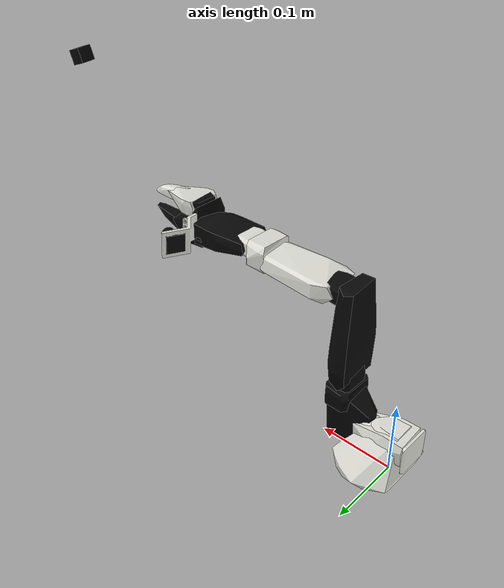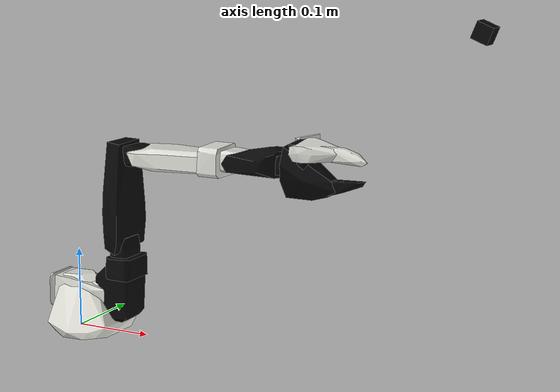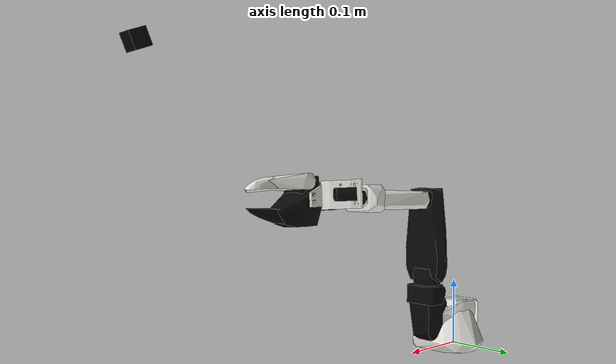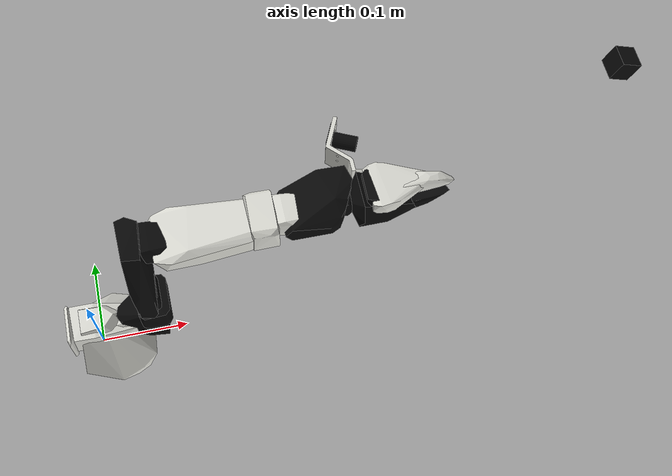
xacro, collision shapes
<?xml version="1.0" encoding="utf-8"?>
<!-- Generated using onshape-to-robot -->
<!-- Onshape https://cad.onshape.com/documents/7715cc284bb430fe6dab4ffd/w/4fd0791b683777b02f8d975a/e/826c553ede3b7592eb9ca800 -->
<robot xmlns:xacro="http://www.ros.org/wiki/xacro" name="so101_new_calib">
  <xacro:arg name="controllers_file" default=""/>

  <!-- Materials -->

  <!-- Matte off-white PLA used for all 3D-printed robot parts -->
  <material name="3d_printed">
    <color rgba="0.88 0.88 0.85 1.0"/>
  </material>

  <!-- Black plastic housing used for STS3215 servos -->
  <material name="sts3215">
    <color rgba="0.03 0.03 0.03 1.0"/>
  </material>
  <material name="camera_black_plastic">
    <color rgba="0.03 0.03 0.03 1.0"/>
  </material>

  <link name="world"/>

  <joint name="world_to_base" type="fixed">
    <parent link="world"/>
    <child link="base_link"/>
    <origin xyz="0 0 0" rpy="0 0 0"/>
  </joint>

  <!-- Link base -->
  <link name="base_link">
    <inertial>
      <origin xyz="0.0137179 -5.19711e-05 0.0334843" rpy="0 0 0"/>
      <mass value="0.147"/>
      <inertia ixx="0.000114686" ixy="-4.59787e-07" ixz="4.97151e-06" iyy="0.000136117" iyz="9.75275e-08" izz="0.000130364"/>
    </inertial>
    <!-- Part base_motor_holder_so101_v1 -->
    <visual>
      <origin xyz="-0.00636471 -9.94414e-05 -0.0024" rpy="1.5708 -1.67685e-15 1.5708"/>
      <geometry>
        <mesh filename="package://so101_description/meshes/base_motor_holder_so101_v1.stl"/>
      </geometry>
      <material name="3d_printed">
        <color rgba="0.88 0.88 0.85 1.0"/>
      </material>
    </visual>
    <collision>
      <origin xyz="-0.00636471 -9.94414e-05 -0.0024" rpy="1.5708 -1.67685e-15 1.5708"/>
      <geometry>
        <mesh filename="package://so101_description/meshes/collision_generated_ultralow/base_motor_holder_so101_v1__ultralow_1hull__part_00.stl"/>
      </geometry>
    </collision>
    <!-- Part base_so101_v2 -->
    <visual>
      <origin xyz="-0.00636471 -8.97657e-09 -0.0024" rpy="1.5708 -2.78073e-29 1.5708"/>
      <geometry>
        <mesh filename="package://so101_description/meshes/base_so101_v2.stl"/>
      </geometry>
      <material name="3d_printed">
        <color rgba="0.88 0.88 0.85 1.0"/>
      </material>
    </visual>
    <collision>
      <origin xyz="-0.00636471 -8.97657e-09 -0.0024" rpy="1.5708 -2.78073e-29 1.5708"/>
      <geometry>
        <mesh filename="package://so101_description/meshes/collision_generated_ultralow/base_so101_v2__ultralow_1hull__part_00.stl"/>
      </geometry>
    </collision>
    <!-- Part sts3215_03a_v1 -->
    <visual>
      <origin xyz="0.0263353 -8.97657e-09 0.0437" rpy="-8.21148e-16 7.84513e-18 1.249e-15"/>
      <geometry>
        <mesh filename="package://so101_description/meshes/sts3215_03a_v1.stl"/>
      </geometry>
      <material name="sts3215">
        <color rgba="0.03 0.03 0.03 1.0"/>
      </material>
    </visual>
    <collision>
      <origin xyz="0.0263353 -8.97657e-09 0.0437" rpy="-8.21148e-16 7.84513e-18 1.249e-15"/>
      <geometry>
        <mesh filename="package://so101_description/meshes/collision_generated_ultralow/sts3215_03a_v1__ultralow_1hull__part_00.stl"/>
      </geometry>
    </collision>
    <!-- Part waveshare_mounting_plate_so101_v2 -->
    <visual>
      <origin xyz="-0.0309827 -0.000199441 0.0474" rpy="1.5708 -1.35493e-14 1.5708"/>
      <geometry>
        <mesh filename="package://so101_description/meshes/waveshare_mounting_plate_so101_v2.stl"/>
      </geometry>
      <material name="3d_printed">
        <color rgba="0.88 0.88 0.85 1.0"/>
      </material>
    </visual>
    <collision>
      <origin xyz="-0.0309827 -0.000199441 0.0474" rpy="1.5708 -1.35493e-14 1.5708"/>
      <geometry>
        <mesh filename="package://so101_description/meshes/collision_generated_ultralow/waveshare_mounting_plate_so101_v2__ultralow_1hull__part_00.stl"/>
      </geometry>
    </collision>
  </link>

  <!-- Top camera link (overhead fixed camera) -->
  <link name="top_camera_link">
    <inertial>
      <origin xyz="0 0 0" rpy="0 0 0"/>
      <mass value="0.01"/>
      <inertia ixx="6.67e-07" ixy="0" ixz="0" iyy="6.67e-07" iyz="0" izz="6.67e-07"/>
    </inertial>
    <visual>
      <origin xyz="0 0 0" rpy="0 0 0"/>
      <geometry>
        <box size="0.02 0.02 0.02"/>
      </geometry>
      <material name="camera_black_plastic"/>
    </visual>
    <collision>
      <origin xyz="0 0 0" rpy="0 0 0"/>
      <geometry>
        <box size="0.02 0.02 0.02"/>
      </geometry>
    </collision>
  </link>

  <!-- Link shoulder -->
  <link name="shoulder_link">
    <inertial>
      <origin xyz="-0.0307604 -1.66727e-05 -0.0252713" rpy="0 0 0"/>
      <mass value="0.100006"/>
      <inertia ixx="8.3759e-05" ixy="7.55525e-08" ixz="-1.16342e-06" iyy="8.10403e-05" iyz="1.54663e-07" izz="2.39783e-05"/>
    </inertial>
    <!-- Part sts3215_03a_v1_2 -->
    <visual>
      <origin xyz="-0.0303992 0.000422241 -0.0417" rpy="1.5708 1.5708 0"/>
      <geometry>
        <mesh filename="package://so101_description/meshes/sts3215_03a_v1.stl"/>
      </geometry>
      <material name="sts3215">
        <color rgba="0.03 0.03 0.03 1.0"/>
      </material>
    </visual>
    <collision>
      <origin xyz="-0.0303992 0.000422241 -0.0417" rpy="1.5708 1.5708 0"/>
      <geometry>
        <mesh filename="package://so101_description/meshes/collision_generated_ultralow/sts3215_03a_v1__ultralow_1hull__part_00.stl"/>
      </geometry>
    </collision>
    <!-- Part motor_holder_so101_base_v1 -->
    <visual>
      <origin xyz="-0.0675992 -0.000177759 0.0158499" rpy="1.5708 -1.5708 0"/>
      <geometry>
        <mesh filename="package://so101_description/meshes/motor_holder_so101_base_v1.stl"/>
      </geometry>
      <material name="3d_printed">
        <color rgba="0.88 0.88 0.85 1.0"/>
      </material>
    </visual>
    <collision>
      <origin xyz="-0.0675992 -0.000177759 0.0158499" rpy="1.5708 -1.5708 0"/>
      <geometry>
        <mesh filename="package://so101_description/meshes/collision_generated_ultralow/motor_holder_so101_base_v1__ultralow_1hull__part_00.stl"/>
      </geometry>
    </collision>
    <!-- Part rotation_pitch_so101_v1 -->
    <visual>
      <origin xyz="0.0122008 2.22413e-05 0.0464" rpy="-1.5708 2.35221e-33 0"/>
      <geometry>
        <mesh filename="package://so101_description/meshes/rotation_pitch_so101_v1.stl"/>
      </geometry>
      <material name="3d_printed">
        <color rgba="0.88 0.88 0.85 1.0"/>
      </material>
    </visual>
    <collision>
      <origin xyz="0.0122008 2.22413e-05 0.0464" rpy="-1.5708 2.35221e-33 0"/>
      <geometry>
        <mesh filename="package://so101_description/meshes/collision_generated_ultralow/rotation_pitch_so101_v1__ultralow_1hull__part_00.stl"/>
      </geometry>
    </collision>
  </link>

  <!-- Link upper_arm -->
  <link name="upper_arm_link">
    <inertial>
      <origin xyz="-0.0898471 -0.00838224 0.0184089" rpy="0 0 0"/>
      <mass value="0.103"/>
      <inertia ixx="4.08002e-05" ixy="-1.97819e-05" ixz="-4.03016e-08" iyy="0.000147318" iyz="8.97326e-09" izz="0.000142487"/>
    </inertial>
    <!-- Part sts3215_03a_v1_3 -->
    <visual>
      <origin xyz="-0.11257 -0.0155 0.0187" rpy="-3.14159 -5.27356e-16 -1.5708"/>
      <geometry>
        <mesh filename="package://so101_description/meshes/sts3215_03a_v1.stl"/>
      </geometry>
      <material name="sts3215">
        <color rgba="0.03 0.03 0.03 1.0"/>
      </material>
    </visual>
    <collision>
      <origin xyz="-0.11257 -0.0155 0.0187" rpy="-3.14159 -5.27356e-16 -1.5708"/>
      <geometry>
        <mesh filename="package://so101_description/meshes/collision_generated_ultralow/sts3215_03a_v1__ultralow_1hull__part_00.stl"/>
      </geometry>
    </collision>
    <!-- Part upper_arm_so101_v1 -->
    <visual>
      <origin xyz="-0.065085 0.012 0.0182" rpy="3.14159 -0 -1.30911e-30"/>
      <geometry>
        <mesh filename="package://so101_description/meshes/upper_arm_so101_v1.stl"/>
      </geometry>
      <material name="3d_printed">
        <color rgba="0.88 0.88 0.85 1.0"/>
      </material>
    </visual>
    <collision>
      <origin xyz="-0.065085 0.012 0.0182" rpy="3.14159 -0 -1.30911e-30"/>
      <geometry>
        <mesh filename="package://so101_description/meshes/collision_generated_ultralow/upper_arm_so101_v1__ultralow_1hull__part_00.stl"/>
      </geometry>
    </collision>
  </link>

  <!-- Link lower_arm -->
  <link name="lower_arm_link">
    <inertial>
      <origin xyz="-0.0980701 0.00324376 0.0182831" rpy="0 0 0"/>
      <mass value="0.104"/>
      <inertia ixx="2.87438e-05" ixy="7.41152e-06" ixz="1.26409e-06" iyy="0.000159844" iyz="-4.90188e-08" izz="0.00014529"/>
    </inertial>
    <!-- Part under_arm_so101_v1 -->
    <visual>
      <origin xyz="-0.0648499 -0.032 0.0182" rpy="3.14159 -0 6.67202e-31"/>
      <geometry>
        <mesh filename="package://so101_description/meshes/under_arm_so101_v1.stl"/>
      </geometry>
      <material name="3d_printed">
        <color rgba="0.88 0.88 0.85 1.0"/>
      </material>
    </visual>
    <collision>
      <origin xyz="-0.0648499 -0.032 0.0182" rpy="3.14159 -0 6.67202e-31"/>
      <geometry>
        <mesh filename="package://so101_description/meshes/collision_generated_ultralow/under_arm_so101_v1__ultralow_1hull__part_00.stl"/>
      </geometry>
    </collision>
    <!-- Part motor_holder_so101_wrist_v1 -->
    <visual>
      <origin xyz="-0.0648499 -0.032 0.018" rpy="-3.14159 -2.55351e-15 -1.83387e-30"/>
      <geometry>
        <mesh filename="package://so101_description/meshes/motor_holder_so101_wrist_v1.stl"/>
      </geometry>
      <material name="3d_printed">
        <color rgba="0.88 0.88 0.85 1.0"/>
      </material>
    </visual>
    <collision>
      <origin xyz="-0.0648499 -0.032 0.018" rpy="-3.14159 -2.55351e-15 -1.83387e-30"/>
      <geometry>
        <mesh filename="package://so101_description/meshes/collision_generated_ultralow/motor_holder_so101_wrist_v1__ultralow_1hull__part_00.stl"/>
      </geometry>
    </collision>
    <!-- Part sts3215_03a_v1_4 -->
    <visual>
      <origin xyz="-0.1224 0.0052 0.0187" rpy="-3.14159 -7.88861e-31 -3.14159"/>
      <geometry>
        <mesh filename="package://so101_description/meshes/sts3215_03a_v1.stl"/>
      </geometry>
      <material name="sts3215">
        <color rgba="0.03 0.03 0.03 1.0"/>
      </material>
    </visual>
    <collision>
      <origin xyz="-0.1224 0.0052 0.0187" rpy="-3.14159 -7.88861e-31 -3.14159"/>
      <geometry>
        <mesh filename="package://so101_description/meshes/collision_generated_ultralow/sts3215_03a_v1__ultralow_1hull__part_00.stl"/>
      </geometry>
    </collision>
  </link>

  <!-- Link wrist -->
  <link name="wrist_link">
    <inertial>
      <origin xyz="-0.000103312 -0.0386143 0.0281156" rpy="0 0 0"/>
      <mass value="0.079"/>
      <inertia ixx="3.68263e-05" ixy="1.7893e-08" ixz="-5.28128e-08" iyy="2.5391e-05" iyz="3.6412e-06" izz="2.1e-05"/>
    </inertial>
    <!-- Part sts3215_03a_no_horn_v1 -->
    <visual>
      <origin xyz="8.32667e-17 -0.0424 0.0306" rpy="1.5708 1.5708 0"/>
      <geometry>
        <mesh filename="package://so101_description/meshes/sts3215_03a_no_horn_v1.stl"/>
      </geometry>
      <material name="sts3215">
        <color rgba="0.03 0.03 0.03 1.0"/>
      </material>
    </visual>
    <collision>
      <origin xyz="8.32667e-17 -0.0424 0.0306" rpy="1.5708 1.5708 0"/>
      <geometry>
        <mesh filename="package://so101_description/meshes/collision_generated_ultralow/sts3215_03a_no_horn_v1__ultralow_1hull__part_00.stl"/>
      </geometry>
    </collision>
    <!-- Part wrist_roll_pitch_so101_v2 -->
    <visual>
      <origin xyz="0 -0.028 0.0181" rpy="-1.5708 -1.5708 0"/>
      <geometry>
        <mesh filename="package://so101_description/meshes/wrist_roll_pitch_so101_v2.stl"/>
      </geometry>
      <material name="3d_printed">
        <color rgba="0.88 0.88 0.85 1.0"/>
      </material>
    </visual>
    <collision>
      <origin xyz="0 -0.028 0.0181" rpy="-1.5708 -1.5708 0"/>
      <geometry>
        <mesh filename="package://so101_description/meshes/collision_generated_ultralow/wrist_roll_pitch_so101_v2__ultralow_1hull__part_00.stl"/>
      </geometry>
    </collision>
  </link>

  <!-- Link gripper -->
  <link name="gripper_link">
    <inertial>
      <origin xyz="0.000213627 0.000245138 -0.025187" rpy="0 0 0"/>
      <mass value="0.087"/>
      <inertia ixx="2.75087e-05" ixy="-3.35241e-07" ixz="-5.7352e-06" iyy="4.33657e-05" iyz="-5.17847e-08" izz="3.45059e-05"/>
    </inertial>
    <!-- Part sts3215_03a_v1_5 -->
    <visual>
      <origin xyz="0.0077 0.0001 -0.0234" rpy="-1.5708 -5.19179e-17 -1.66533e-16"/>
      <geometry>
        <mesh filename="package://so101_description/meshes/sts3215_03a_v1.stl"/>
      </geometry>
      <material name="sts3215">
        <color rgba="0.03 0.03 0.03 1.0"/>
      </material>
    </visual>
    <collision>
      <origin xyz="0.0077 0.0001 -0.0234" rpy="-1.5708 -5.19179e-17 -1.66533e-16"/>
      <geometry>
        <mesh filename="package://so101_description/meshes/collision_generated_ultralow/sts3215_03a_v1__ultralow_1hull__part_00.stl"/>
      </geometry>
    </collision>
    <!-- Part wrist_roll_follower_so101_v1 -->
    <visual>
      <origin xyz="8.32667e-17 -0.000218214 0.000949706" rpy="-3.14159 -5.55112e-17 0"/>
      <geometry>
        <mesh filename="package://so101_description/meshes/wrist_roll_follower_so101_v1.stl"/>
      </geometry>
      <material name="3d_printed">
        <color rgba="0.88 0.88 0.85 1.0"/>
      </material>
    </visual>
    <collision name="generated_wrist_roll_follower_so101_v1_part_00">
      <origin xyz="8.32667e-17 -0.000218214 0.000949706" rpy="-3.14159 -5.55112e-17 0"/>
      <geometry>
        <mesh filename="package://so101_description/meshes/collision_generated_ultralow/wrist_roll_follower_so101_v1__functional_body__part_00.stl"/>
      </geometry>
    </collision>
    <collision name="generated_wrist_roll_follower_so101_v1_part_01">
      <origin xyz="8.32667e-17 -0.000218214 0.000949706" rpy="-3.14159 -5.55112e-17 0"/>
      <geometry>
        <mesh filename="package://so101_description/meshes/collision_generated_ultralow/wrist_roll_follower_so101_v1__functional_finger__part_01.stl"/>
      </geometry>
    </collision>
  </link>

  <!-- Gripper frame (dummy link + fixed joint) -->
  <link name="gripper_frame_link">
    <origin xyz="0 0 0" rpy="0 -0 0"/>
    <inertial>
      <origin xyz="0 0 0" rpy="0 0 0"/>
      <mass value="1e-9"/>
      <inertia ixx="0" ixy="0" ixz="0" iyy="0" iyz="0" izz="0"/>
    </inertial>
  </link>

  <!-- Physical mounting bracket for the gripper camera.
       The camera sensor remains on gripper_camera_link for now. -->
  <link name="gripper_camera_mount_link">
    <inertial>
      <origin xyz="0 0 0" rpy="0 0 0"/>
      <mass value="0.01"/>
      <inertia
        ixx="1e-6" ixy="0" ixz="0"
        iyy="1e-6" iyz="0"
        izz="1e-6"/>
    </inertial>

    <visual>
      <origin xyz="0 0 0" rpy="0 0 0"/>
      <geometry>
        <mesh
          filename="package://so101_description/meshes/gripper_camera_mount.stl"
          scale="0.001 0.001 0.001"/>
      </geometry>
      <material name="3d_printed">
        <color rgba="0.88 0.88 0.85 1.0"/>
      </material>
    </visual>

    <collision name="gripper_camera_mount_collision">
      <origin xyz="0 0 0" rpy="0 0 0"/>
      <geometry>
        <mesh
          filename="package://so101_description/meshes/gripper_camera_mount.stl"
          scale="0.001 0.001 0.001"/>
      </geometry>
    </collision>
  </link>

  <!-- Temporary initial pose.
       Adjust this joint to align the bracket with the physical gripper body. -->
  <joint name="gripper_camera_mount_joint" type="fixed">
    <origin xyz="0.1211 0.023897 -0.12016"
            rpy="-1.570796 3.141593 0"/>
    <parent link="gripper_link"/>
    <child link="gripper_camera_mount_link"/>
  </joint>

  <link name="gripper_camera_link">
    <inertial>
      <origin xyz="0 0 0" rpy="0 0 0"/>
      <mass value="0.02"/>
      <inertia
        ixx="1e-5" ixy="0" ixz="0"
        iyy="1e-5" iyz="0"
        izz="1e-5"/>
    </inertial>

    <!-- Camera body: 27 mm x 30 mm x 2 mm.
         Link origin is at the centre of the body/lens interface. -->
    <visual name="camera_body_visual">
      <origin xyz="0 0 -0.001" rpy="0 0 0"/>
      <geometry>
        <box size="0.024 0.024 0.002"/>
      </geometry>
      <material name="camera_body_material">
        <color rgba="0.03 0.03 0.03 1.0"/>
      </material>
    </visual>

    <!-- Cylindrical camera section: radius 8 mm, length 28 mm.
         Extends from the sensor origin along +Z. -->
    <visual name="camera_lens_visual">
      <origin xyz="0 0 0.014" rpy="0 0 0"/>
      <geometry>
        <cylinder radius="0.008" length="0.028"/>
      </geometry>
      <material name="camera_lens_material">
        <color rgba="0.01 0.01 0.01 1.0"/>
      </material>
    </visual>

    <collision name="camera_body_collision">
      <origin xyz="0 0 -0.001" rpy="0 0 0"/>
      <geometry>
        <box size="0.024 0.024 0.002"/>
      </geometry>
    </collision>

    <collision name="camera_lens_collision">
      <origin xyz="0 0 0.014" rpy="0 0 0"/>
      <geometry>
        <cylinder radius="0.008" length="0.028"/>
      </geometry>
    </collision>
  </link>

  <joint name="gripper_frame_joint" type="fixed">
    <origin xyz="-0.0079 -0.000218121 -0.0981274" rpy="0 3.14159 0"/>
    <parent link="gripper_link"/>
    <child link="gripper_frame_link"/>
    <axis xyz="0 0 0"/>
  </joint>

  <joint name="gripper_camera_joint" type="fixed">
    <!-- xyz: camera mount position relative to end-effector frame (gripper_frame_link) -->
    <!-- rpy: camera orientation relative to end-effector frame (gripper_frame_link) -->
    <origin xyz="-0.0103 0.07322 -0.104" rpy="0.436332 0 0"/>
    <parent link="gripper_frame_link"/>
    <child link="gripper_camera_link"/>
  </joint>

  <!-- Link moving_jaw_so101_v1 -->
  <link name="moving_jaw_so101_v1_link">
    <inertial>
      <origin xyz="-0.00157495 -0.0300244 0.0192755" rpy="0 0 0"/>
      <mass value="0.012"/>
      <inertia ixx="6.61427e-06" ixy="-3.19807e-07" ixz="-5.90717e-09" iyy="1.89032e-06" iyz="-1.09945e-07" izz="5.28738e-06"/>
    </inertial>
    <!-- Part moving_jaw_so101_v1 -->
    <visual>
      <origin xyz="-5.55112e-17 -5.55112e-17 0.0189" rpy="9.53145e-17 6.93889e-18 1.24077e-24"/>
      <geometry>
        <mesh filename="package://so101_description/meshes/moving_jaw_so101_v1.stl"/>
      </geometry>
      <material name="3d_printed">
        <color rgba="0.88 0.88 0.85 1.0"/>
      </material>
    </visual>
    <collision name="generated_moving_jaw_so101_v1_part_00">
      <origin xyz="-5.55112e-17 -5.55112e-17 0.0189" rpy="9.53145e-17 6.93889e-18 1.24077e-24"/>
      <geometry>
        <mesh filename="package://so101_description/meshes/collision_generated_ultralow/moving_jaw_so101_v1__functional_body__part_00.stl"/>
      </geometry>
    </collision>
    <collision name="generated_moving_jaw_so101_v1_part_01">
      <origin xyz="-5.55112e-17 -5.55112e-17 0.0189" rpy="9.53145e-17 6.93889e-18 1.24077e-24"/>
      <geometry>
        <mesh filename="package://so101_description/meshes/collision_generated_ultralow/moving_jaw_so101_v1__functional_finger__part_01.stl"/>
      </geometry>
    </collision>
  </link>

  <!-- Joint from gripper to moving_jaw_so101_v1 -->
  <joint name="gripper" type="revolute">
    <origin xyz="0.0202 0.0188 -0.0234" rpy="1.5708 -5.24284e-08 -1.41553e-15"/>
    <parent link="gripper_link"/>
    <child link="moving_jaw_so101_v1_link"/>
    <axis xyz="0 0 1"/>
    <limit effort="10" velocity="10" lower="-0.174533" upper="1.74533"/>
  </joint>

  <!-- Joint from wrist to gripper -->
  <joint name="wrist_roll" type="revolute">
    <origin xyz="5.55112e-17 -0.0611 0.0181" rpy="1.5708 0.0486795 3.14159"/>
    <parent link="wrist_link"/>
    <child link="gripper_link"/>
    <axis xyz="0 0 1"/>
    <limit effort="10" velocity="10" lower="-2.74385" upper="2.84121"/>
  </joint>

  <!-- Joint from lower_arm to wrist -->
  <joint name="wrist_flex" type="revolute">
    <origin xyz="-0.1349 0.0052 3.62355e-17" rpy="4.02456e-15 8.67362e-16 -1.5708"/>
    <parent link="lower_arm_link"/>
    <child link="wrist_link"/>
    <axis xyz="0 0 1"/>
    <limit effort="10" velocity="10" lower="-1.65806" upper="1.65806"/>
  </joint>

  <!-- Joint from upper_arm to lower_arm -->
  <!-- Note: 5-degree calibration offset applied to joint limits -->
  <joint name="elbow_flex" type="revolute">
    <origin xyz="-0.11257 -0.028 1.73763e-16" rpy="-3.63608e-16 8.74301e-16 1.5708"/>
    <parent link="upper_arm_link"/>
    <child link="lower_arm_link"/>
    <axis xyz="0 0 1"/>
    <limit effort="10" velocity="10" lower="-1.69" upper="1.69"/>
  </joint>

  <!-- Joint from shoulder to upper_arm -->
  <joint name="shoulder_lift" type="revolute">
    <origin xyz="-0.0303992 -0.0182778 -0.0542" rpy="-1.5708 -1.5708 0"/>
    <parent link="shoulder_link"/>
    <child link="upper_arm_link"/>
    <axis xyz="0 0 1"/>
    <limit effort="10" velocity="10" lower="-1.74533" upper="1.74533"/>
  </joint>

  <!-- Joint from base to shoulder -->
  <joint name="shoulder_pan" type="revolute">
    <origin xyz="0.0388353 -8.97657e-09 0.0624" rpy="3.14159 4.18253e-17 -3.14159"/>
    <parent link="base_link"/>
    <child link="shoulder_link"/>
    <axis xyz="0 0 1"/>
    <limit effort="10" velocity="10" lower="-1.91986" upper="1.91986"/>
  </joint>

  <joint name="top_camera_joint" type="fixed">
    <origin xyz="0.528 0.000 0.3976" rpy="0 1.954769 0"/>
    <parent link="base_link"/>
    <child link="top_camera_link"/>
  </joint>

  <ros2_control name="GazeboSimSystem" type="system">
    <hardware>
      <plugin>gz_ros2_control/GazeboSimSystem</plugin>
    </hardware>
    <joint name="shoulder_pan">
      <command_interface name="position"/>
      <state_interface name="position"/>
      <state_interface name="velocity"/>
    </joint>
    <joint name="shoulder_lift">
      <command_interface name="position"/>
      <state_interface name="position"/>
      <state_interface name="velocity"/>
    </joint>
    <joint name="elbow_flex">
      <command_interface name="position"/>
      <state_interface name="position"/>
      <state_interface name="velocity"/>
    </joint>
    <joint name="wrist_flex">
      <command_interface name="position"/>
      <state_interface name="position"/>
      <state_interface name="velocity"/>
    </joint>
    <joint name="wrist_roll">
      <command_interface name="position"/>
      <state_interface name="position"/>
      <state_interface name="velocity"/>
    </joint>
    <joint name="gripper">
      <command_interface name="position"/>
      <state_interface name="position"/>
      <state_interface name="velocity"/>
    </joint>
  </ros2_control>

  <gazebo reference="gripper_link">
    <sensor name="fixed_finger_contact" type="contact">
      <always_on>true</always_on>
      <update_rate>100</update_rate>
      <contact>
        <topic>/so101/contacts/raw/fixed_finger</topic>
        <collision>gripper_link_fixed_joint_lump__generated_wrist_roll_follower_so101_v1_part_01_collision_2</collision>
      </contact>
    </sensor>
  </gazebo>
  <gazebo reference="moving_jaw_so101_v1_link">
    <sensor name="moving_finger_contact" type="contact">
      <always_on>true</always_on>
      <update_rate>100</update_rate>
      <contact>
        <topic>/so101/contacts/raw/moving_finger</topic>
        <collision>moving_jaw_so101_v1_link_fixed_joint_lump__generated_moving_jaw_so101_v1_part_01_collision_1</collision>
      </contact>
    </sensor>
  </gazebo>

  <gazebo>
    <plugin filename="gz_ros2_control-system" name="gz_ros2_control::GazeboSimROS2ControlPlugin">
      <parameters>$(arg controllers_file)</parameters>
    </plugin>
    <!-- Semantic segmentation label for whole robot model -->
    <plugin filename="ignition-gazebo-label-system" name="ignition::gazebo::systems::Label">
      <label>10</label>
    </plugin>
  </gazebo>

  <!-- Top / fixed camera                                        -->
  <!-- Raw pinhole horizontal FOV: 100 deg = 1.745329 rad -->
  <!-- Resolution: 800 x 600 -->
  <!-- Raw sensor rate: 45 Hz; policy sampling rate: 30 Hz -->
  <gazebo reference="top_camera_link">
    <sensor name="top_camera_sensor" type="camera">
      <always_on>true</always_on>
      <update_rate>45</update_rate>
      <topic>/top_camera/image_raw</topic>

      <camera>
        <camera_info_topic>/top_camera/camera_info</camera_info_topic>

        <!-- Temporary effective pinhole FOV inferred from the 0.60 m table span -->
        <horizontal_fov>1.745329</horizontal_fov>

        <image>
          <width>800</width>
          <height>600</height>
          <format>R8G8B8</format>
        </image>

        <clip>
          <near>0.01</near>
          <far>10.0</far>
        </clip>
      </camera>
    </sensor>

    <sensor name="top_camera_segmentation_sensor" type="segmentation">
      <always_on>false</always_on>
      <update_rate>60</update_rate>
      <topic>/top_camera/segmentation</topic>

      <camera>
        <segmentation_type>semantic</segmentation_type>
        <camera_info_topic>/top_camera/segmentation/camera_info</camera_info_topic>

        <!-- Keep segmentation geometry identical to the RGB camera -->
        <horizontal_fov>1.745329</horizontal_fov>

        <image>
          <width>800</width>
          <height>600</height>
          <format>R8G8B8</format>
        </image>

        <clip>
          <near>0.01</near>
          <far>10.0</far>
        </clip>
      </camera>
    </sensor>
  </gazebo>

  <!-- Gripper camera                                            -->
  <!-- Assumed horizontal FOV: 50 deg = 0.872665 rad             -->
  <!-- Resolution: 640 x 480                                     -->
  <!-- Frame rate: 30 Hz, initial simulation test value           -->
  <gazebo reference="gripper_camera_link">
    <sensor name="gripper_camera_sensor" type="camera">

      <!-- Preserve the currently verified sensor position/orientation -->
      <pose>0.007 -0.0015 0.0001 0 -1.570796 -1.570796</pose>

      <always_on>true</always_on>
      <update_rate>45</update_rate>
      <topic>/gripper_camera/image_raw</topic>

      <camera>
        <camera_info_topic>/gripper_camera/camera_info</camera_info_topic>

        <!-- Temporarily treat the advertised 50 deg FOV as horizontal -->
        <horizontal_fov>0.872665</horizontal_fov>

        <image>
          <width>640</width>
          <height>480</height>
          <format>R8G8B8</format>
        </image>

        <clip>
          <near>0.01</near>
          <far>10.0</far>
        </clip>
      </camera>
    </sensor>

    <sensor name="gripper_camera_segmentation_sensor" type="segmentation">

      <!-- Must match the RGB sensor pose exactly -->
      <pose>0.007 -0.0015 0.0001 0 -1.570796 -1.570796</pose>

      <always_on>false</always_on>
      <update_rate>30</update_rate>
      <topic>/gripper_camera/segmentation</topic>

      <camera>
        <segmentation_type>semantic</segmentation_type>
        <camera_info_topic>/gripper_camera/segmentation/camera_info</camera_info_topic>

        <!-- Keep segmentation geometry identical to the RGB camera -->
        <horizontal_fov>0.872665</horizontal_fov>

        <image>
          <width>640</width>
          <height>480</height>
          <format>R8G8B8</format>
        </image>

        <clip>
          <near>0.01</near>
          <far>10.0</far>
        </clip>
      </camera>
    </sensor>
  </gazebo>

</robot>
